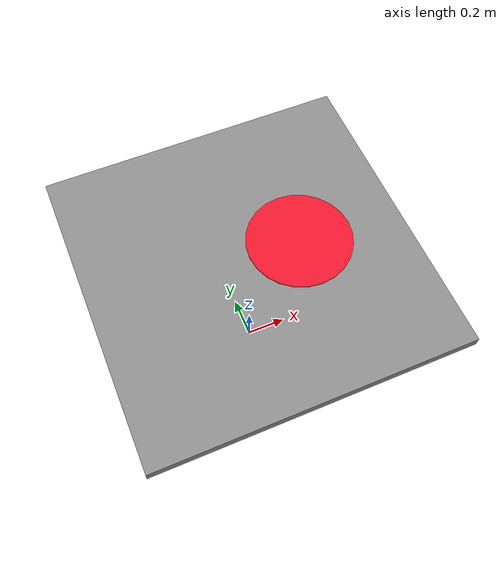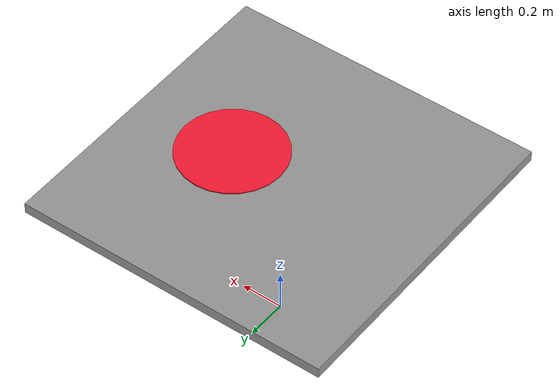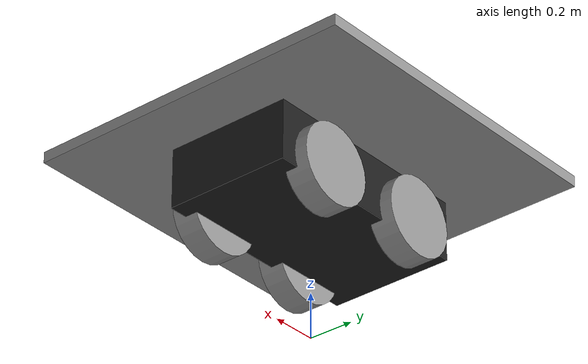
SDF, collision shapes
<?xml version='1.0'?>
<sdf version='1.6'>
  <model name="rover_ardupilot">
    <pose>0 0 0.5 0 0 0</pose>
    <include>
      <uri>model://husky</uri>
      <pose>0 0 0 0 0 0</pose>
    </include>

    <link name='imu_link'>
      <pose>0 0 0 0 0 0</pose>
      <inertial>
        <pose>0 0 0 0 0 0</pose>
        <mass>0.015</mass>
        <inertia>
          <ixx>1e-05</ixx>
          <ixy>0</ixy>
          <ixz>0</ixz>
          <iyy>1e-05</iyy>
          <iyz>0</iyz>
          <izz>1e-05</izz>
        </inertia>
      </inertial>
      <sensor name="imu_sensor" type="imu">
        <pose>0 0 0 3.141593 0 0</pose>
        <always_on>1</always_on>
        <update_rate>1000.0</update_rate>
      </sensor>
    </link>
    <joint name='imu_joint' type='revolute'>
      <child>imu_link</child>
      <parent>husky::base_link</parent>
      <axis>
        <xyz>1 0 0</xyz>
        <limit>
          <lower>0</lower>
          <upper>0</upper>
          <effort>0</effort>
          <velocity>0</velocity>
        </limit>
        <dynamics>
          <damping>0.7</damping>
        </dynamics>
        <use_parent_model_frame>1</use_parent_model_frame>
      </axis>
    </joint>

    <plugin name="ArduCopter_Plugin" filename="libArduPilotPlugin.so">
      <fdm_addr>127.0.0.1</fdm_addr>
      <fdm_port_in>9042</fdm_port_in>
      <fdm_port_out>9043</fdm_port_out>
      <!--
          Require by APM :
          Only change model and gazebo from XYZ to XY-Z coordinates
      -->
      <modelXYZToAirplaneXForwardZDown>0 0 0 3.141593 0 0</modelXYZToAirplaneXForwardZDown>
      <gazeboXYZToNED>0 0 0 3.141593 0 0</gazeboXYZToNED>
      <imuName>rover_ardupilot::imu_link::imu_sensor</imuName>
      <connectionTimeoutMaxCount>5</connectionTimeoutMaxCount>
      <!--
          incoming control command [0, 1]
          so offset it by 0 to get [0, 1]
          and divide max target by 1.
          offset = 0
          multiplier = 838 max rpm / 1 = 838
        -->
      <control channel="0">
        <type>VELOCITY</type>
        <offset>-0.5</offset>
        <p_gain>1</p_gain>
        <i_gain>0</i_gain>
        <d_gain>0</d_gain>
        <i_max>0</i_max>
        <i_min>0</i_min>
        <cmd_max>10</cmd_max>
        <cmd_min>-10</cmd_min>
        <jointName>husky::front_left_joint</jointName>
        <multiplier>70</multiplier>
      </control>
      <control channel="2">
        <type>VELOCITY</type>
        <offset>-0.5</offset>
        <p_gain>1</p_gain>
        <i_gain>0</i_gain>
        <d_gain>0</d_gain>
        <i_max>0</i_max>
        <i_min>0</i_min>
        <cmd_max>10</cmd_max>
        <cmd_min>-10</cmd_min>
        <jointName>husky::front_right_joint</jointName>
        <multiplier>70</multiplier>
      </control>
      <control channel="0">
        <type>VELOCITY</type>
        <offset>-0.5</offset>
        <p_gain>1</p_gain>
        <i_gain>0</i_gain>
        <d_gain>0</d_gain>
        <i_max>0</i_max>
        <i_min>0</i_min>
        <cmd_max>10</cmd_max>
        <cmd_min>-10</cmd_min>
        <jointName>husky::back_left_joint</jointName>
        <multiplier>70</multiplier>
      </control>
      <control channel="2">
        <type>VELOCITY</type>
        <offset>-0.5</offset>
        <p_gain>1</p_gain>
        <i_gain>0</i_gain>
        <d_gain>0</d_gain>
        <i_max>0</i_max>
        <i_min>0</i_min>
        <cmd_max>10</cmd_max>
        <cmd_min>-10</cmd_min>
        <jointName>husky::back_right_joint</jointName>
        <multiplier>70</multiplier>
      </control>
    </plugin>

  </model>
</sdf>

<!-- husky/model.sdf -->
<sdf version="1.3">
  <model name="husky">
    <pose>0 0 0 0 0 0</pose>
    <!-- Main Chassis -->
    <link name="base_link">
      <!-- Physics -->
      <collision name='collision'>
        <pose>0 0 0.1 0 0 0</pose>
        <geometry>
          <box>
            <size>1.0074 0.5709 0.2675</size>
          </box>
        </geometry>
      </collision>

      <inertial>
        <mass>1.3855</mass>
        <pose>-0.0856132 -0.000839955 0.238145  0 0 0</pose>
        <inertia>
          <ixx>2.2343</ixx>
          <ixy>-0.023642</ixy>
          <ixz>0.275174</ixz>
          <iyy>3.42518</iyy>
          <iyz>0.00239624</iyz>
          <izz>2.1241</izz>
        </inertia>
      </inertial>

      <!-- Visual -->
      <!-- Base frame -->
      <visual name='base'>
        <pose>0 0 0 0 0 0</pose>
        <geometry>
          <mesh><uri>model://husky/meshes/base_link.stl</uri></mesh>
        </geometry>
        <material>
          <script>
            <name>Gazebo/FlatBlack</name>
          </script>
        </material>
      </visual>

      <!-- Top Plate -->
      <visual name='top_plate'>
        <pose>0 0 0 0 0 0</pose>
        <geometry>
          <mesh><uri>model://husky/meshes/top_plate.stl</uri></mesh>
        </geometry>
        <material>
          <script>
            <name>Gazebo/Yellow</name>
          </script>
        </material>
      </visual>

      <!-- Front Bumper -->
      <visual name='front_bumper'>
        <pose>0.47 0 0.091 0 0 0</pose>
        <geometry>
          <mesh><uri>model://husky/meshes/bumper.stl</uri></mesh>
        </geometry>
        <material>
          <script>
            <name>Gazebo/FlatBlack</name>
          </script>
        </material>
      </visual>

      <!-- Rear Bumper -->
      <visual name='rear_bumper'>
        <pose>-0.47 0 0.091 0 0 3.141</pose>
        <geometry>
          <mesh><uri>model://husky/meshes/bumper.stl</uri></mesh>
        </geometry>
        <material>
          <script>
            <name>Gazebo/FlatBlack</name>
          </script>
        </material>
      </visual>

      <!-- User Rail -->
      <visual name='user_rail'>
        <pose>0.272 0 0.245 0 0 0</pose>
        <geometry>
          <mesh><uri>model://husky/meshes/user_rail.stl</uri></mesh>
        </geometry>
        <material>
          <script>
            <name>Gazebo/Grey</name>
          </script>
        </material>
      </visual>
    </link>

    <!-- Back Left Wheel -->
    <link name='back_left_wheel'>
      <pose>-0.256 0.285475 0.035 0 0 0</pose>
      <inertial>
        <mass>0.26357</mass>
        <pose>0 0 0 0 0 0</pose>
        <inertia>
          <ixx>0.0246688</ixx>
          <ixy>0</ixy>
          <ixz>0</ixz>
          <iyy>0.0246688</iyy>
          <iyz>0</iyz>
          <izz>0.0441058</izz>
        </inertia>
      </inertial>
      <collision name='back_left_wheel_collision'>
        <pose>0 0 0 -1.5707 0 0</pose>
        <geometry>
          <cylinder>
            <radius>0.17775</radius>
            <length>0.1143</length>
          </cylinder>
        </geometry>
        <surface>
          <friction>
            <ode>
              <mu>100000.0</mu>
              <mu2>100000.0</mu2>
              <slip1>0.0</slip1>
              <slip2>0.0</slip2>
              <fdir1>1 0 0</fdir1>
            </ode>
          </friction>
        </surface>
      </collision>
      <visual name='back_left_wheel'>
        <pose>0 0 0 -3.14159 0 0</pose>
        <geometry>
          <mesh><uri>model://husky/meshes/wheel.stl</uri></mesh>
        </geometry>
        <material>
          <script>
            <name>Gazebo/Grey</name>
          </script>
        </material>
      </visual>
    </link>
    <joint name='back_left_joint' type='revolute'>
      <parent>base_link</parent>
      <child>back_left_wheel</child>
      <axis>
        <xyz>0 1 0</xyz>
      </axis>
      <physics><ode><limit>
            <cfm>0.000000</cfm>
            <erp>0.900000</erp>
      </limit></ode></physics>
    </joint>

    <!-- Back Right Wheel -->
    <link name='back_right_wheel'>
      <pose>-0.256 -0.285475 0.035 0 0 0</pose>
      <inertial>
        <mass>0.26357</mass>
        <pose>0 0 0 0 0 0</pose>
        <inertia>
          <ixx>0.0246688</ixx>
          <ixy>0</ixy>
          <ixz>0</ixz>
          <iyy>0.0246688</iyy>
          <iyz>0</iyz>
          <izz>0.0441058</izz>
        </inertia>
      </inertial>
      <collision name='back_right_wheel_collision'>
        <pose>0 0 0 -1.5707 0 0</pose>
        <geometry>
          <cylinder>
            <radius>0.17775</radius>
            <length>0.1143</length>
          </cylinder>
        </geometry>
        <surface>
          <friction>
            <ode>
              <mu>100000.0</mu>
              <mu2>100000.0</mu2>
              <slip1>0.0</slip1>
              <slip2>0.0</slip2>
              <fdir1>1 0 0</fdir1>
            </ode>
          </friction>
        </surface>
      </collision>
      <visual name='back_right_wheel'>
        <pose>0 0 0 -3.14159 0 0</pose>
        <geometry>
          <mesh><uri>model://husky/meshes/wheel.stl</uri></mesh>
        </geometry>
        <material>
          <script>
            <name>Gazebo/Grey</name>
          </script>
        </material>
      </visual>
    </link>
    <joint name='back_right_joint' type='revolute'>
      <parent>base_link</parent>
      <child>back_right_wheel</child>
      <axis>
        <xyz>0 1 0</xyz>
      </axis>
      <physics><ode><limit>
            <cfm>0.000000</cfm>
            <erp>0.900000</erp>
      </limit></ode></physics>
    </joint>

    <!-- Front Left Wheel -->
    <link name='front_left_wheel'>
      <pose>0.256 0.285475 0.035 0 0 0</pose>
      <inertial>
        <mass>0.26357</mass>
        <pose>0 0 0 0 0 0</pose>
        <inertia>
          <ixx>0.0246688</ixx>
          <ixy>0</ixy>
          <ixz>0</ixz>
          <iyy>0.0246688</iyy>
          <iyz>0</iyz>
          <izz>0.0441058</izz>
        </inertia>
      </inertial>
      <collision name='front_left_wheel_collision'>
        <pose>0 0 0 -1.5707 0 0</pose>
        <geometry>
          <cylinder>
            <radius>0.17775</radius>
            <length>0.1143</length>
          </cylinder>
        </geometry>
        <surface>
          <friction>
            <ode>
              <mu>100000.0</mu>
              <mu2>100000.0</mu2>
              <slip1>0.0</slip1>
              <slip2>0.0</slip2>
              <fdir1>1 0 0</fdir1>
            </ode>
          </friction>
        </surface>
      </collision>
      <visual name='front_left_wheel'>
        <pose>0 0 0 -3.14159 0 0</pose>
        <geometry>
          <mesh><uri>model://husky/meshes/wheel.stl</uri></mesh>
        </geometry>
        <material>
          <script>
            <name>Gazebo/Grey</name>
          </script>
        </material>
      </visual>
    </link>
    <joint name='front_left_joint' type='revolute'>
      <parent>base_link</parent>
      <child>front_left_wheel</child>
      <axis>
        <xyz>0 1 0</xyz>
      </axis>
      <physics><ode><limit>
            <cfm>0.000000</cfm>
            <erp>0.900000</erp>
      </limit></ode></physics>
    </joint>

    <!-- Front Right Wheel -->
    <link name='front_right_wheel'>
      <pose>0.256 -0.285475 0.035 0 0 0</pose>
      <inertial>
        <mass>0.26357</mass>
        <pose>0 0 0 0 0 0</pose>
        <inertia>
          <ixx>0.0246688</ixx>
          <ixy>0</ixy>
          <ixz>0</ixz>
          <iyy>0.0246688</iyy>
          <iyz>0</iyz>
          <izz>0.0441058</izz>
        </inertia>
      </inertial>
      <collision name='front_right_wheel_collision'>
        <pose>0 0 0 -1.5707 0 0</pose>
        <geometry>
          <cylinder>
            <radius>0.17775</radius>
            <length>0.1143</length>
          </cylinder>
        </geometry>
        <surface>
          <friction>
            <ode>
              <mu>100000.0</mu>
              <mu2>100000.0</mu2>
              <slip1>0.0</slip1>
              <slip2>0.0</slip2>
              <fdir1>1 0 0</fdir1>
            </ode>
          </friction>
        </surface>
      </collision>
      <visual name='front_right_wheel'>
        <pose>0 0 0 -3.14159 0 0</pose>
        <geometry>
          <mesh><uri>model://husky/meshes/wheel.stl</uri></mesh>
        </geometry>
        <material>
          <script>
            <name>Gazebo/Grey</name>
          </script>
        </material>
      </visual>
    </link>
    <joint name='front_right_joint' type='revolute'>
      <parent>base_link</parent>
      <child>front_right_wheel</child>
      <axis>
        <xyz>0 1 0</xyz>
      </axis>
      <physics><ode><limit>
            <cfm>0.000000</cfm>
            <erp>0.900000</erp>
      </limit></ode></physics>
    </joint>

  <link name='black_sheet'>
    <inertial>
        <mass>0.2</mass>
    </inertial>
    <collision name='black_sheet_collision'>
      <pose>0 0 0.2675 0 0 0</pose>
      <geometry>
        <box>
          <size>1.5 1.5 .05</size>
        </box>
      </geometry>
    </collision>
    <visual name='black_sheet_visual'>
      <material>
          <script>
            <name>Gazebo/Grey</name>
            <uri>__default__</uri>
          </script>
      </material>
      <pose>0 0 0.2675 0 0 0</pose>
      <geometry>
        <box>
          <size>1.5 1.5 .05</size>
        </box>
      </geometry>
    </visual>
  </link>

  <joint name='black_sheet_joint' type='fixed'>
      <parent>base_link</parent>
      <child>black_sheet</child>
      <axis>
        <xyz>0 0 1</xyz>
      </axis>
  </joint>

  <link name='red_sheet'>
    <inertial>
        <mass>0.05</mass>
    </inertial>
    <collision name='red_sheet_collision'>
      <pose>0.25 0 0.298 0 0 0</pose>
      <geometry>
        <cylinder>
            <radius>0.25</radius>
            <length>0.005</length>
        </cylinder>
      </geometry>
    </collision>
    <visual name='red_sheet_visual'>
      <material>
          <ambient>1 0 0 0.2</ambient>
          <diffuse>1 0.1 0.2 1</diffuse>
          <specular>0 0 0 0</specular>
          <emissive>0 0 0 1</emissive>
      </material>
      <pose>0.25 0 0.298 0 0 0</pose>
      <geometry>
        <cylinder>
            <radius>0.25</radius>
            <length>0.005</length>
        </cylinder>
      </geometry>
    </visual>
  </link>

  <joint name='red_sheet_joint' type='fixed'>
      <parent>black_sheet</parent>
      <child>red_sheet</child>
      <axis>
        <xyz>0 0 1</xyz>
      </axis>
  </joint>

  <!-- Hokuyo Laser -->

    <plugin name="husky_diff_controller" filename="libhusky_gazebo_plugins.so">
      <alwaysOn>true</alwaysOn>
      <updateRate>100.0</updateRate>
      <backLeftJoint>back_left_joint</backLeftJoint>
      <backRightJoint>back_right_joint</backRightJoint>
      <frontLeftJoint>front_left_joint</frontLeftJoint>
      <frontRightJoint>front_right_joint</frontRightJoint>
      <wheelSeparation>0.5709</wheelSeparation>
      <wheelDiameter>0.3555</wheelDiameter>
      <torque>35</torque>
    </plugin>
  </model>
</sdf>
